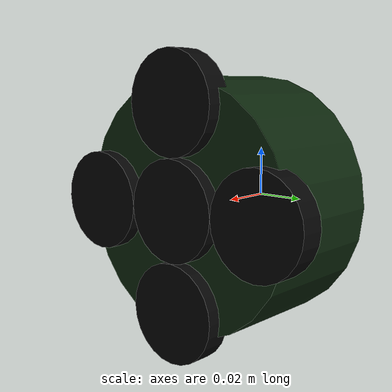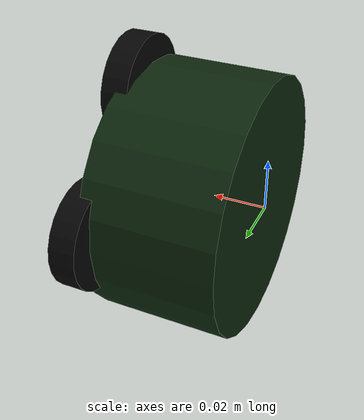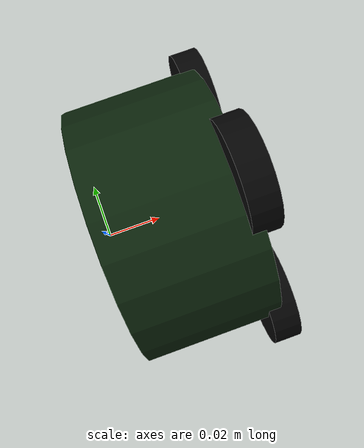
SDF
<?xml version="1.0" ?>
<sdf version='1.9'>
  <model name="suction_gripper">
    <link name='end_effector'>
      <inertial>
        <mass>0.1</mass>
        <inertia>
          <ixx>0.00166667</ixx>
          <ixy>0</ixy>
          <ixz>0</ixz>
          <iyy>0.00166667</iyy>
          <iyz>0</iyz>
          <izz>0.00166667</izz>
         </inertia>
      </inertial>
      <collision name='end_effector_collision'>
        <pose>0.025 0 0 0 1.57079 0</pose>
        <geometry>
          <cylinder>
            <radius>0.05</radius>
            <length>0.05</length>
          </cylinder>
        </geometry>
      </collision>
      <visual name='end_effector_visual'>
        <pose>0.025 0 0 0 1.57079 0</pose>
        <geometry>
          <cylinder>
            <radius>0.05</radius>
            <length>0.05</length>
          </cylinder>
        </geometry>
        <material>
          <diffuse>0.05 0.15 0.05</diffuse>
          <specular>0.8 0.8 0.8</specular>
        </material>
      </visual>
    </link>
    <link name='suction'>
      <inertial>
        <mass>0.1</mass>
        <inertia>
          <ixx>0.00166667</ixx>
          <ixy>0</ixy>
          <ixz>0</ixz>
          <iyy>0.00166667</iyy>
          <iyz>0</iyz>
          <izz>0.00166667</izz>
         </inertia>
      </inertial>

      <collision name='suction_collision_11'>
        <pose>0.0505 0 0 0 1.57079 0</pose>
        <geometry>
          <cylinder>
            <radius>0.02</radius>
            <length>0.01</length>
          </cylinder>
        </geometry>
      </collision>
      <visual name='suction_visual_11'>
        <pose>0.0505 0 0 0 1.57079 0</pose>
        <geometry>
          <cylinder>
            <radius>0.02</radius>
            <length>0.01</length>
          </cylinder>
        </geometry>
        <material>
          <diffuse>0.02 0.02 0.02</diffuse>
          <specular>0.3 0.3 0.3</specular>
        </material>
      </visual>
      <sensor name='sensor_contact_11' type='contact'>
        <contact>
          <collision>suction_collision_11</collision>
          <topic>gripper/contact_sensor_11</topic>
        </contact>
        <always_on>1</always_on>
        <update_rate>100</update_rate>
      </sensor>

      <collision name='suction_collision_10'>
        <pose>0.0505 0 -0.04 0 1.57079 0</pose>
        <geometry>
          <cylinder>
            <radius>0.02</radius>
            <length>0.01</length>
          </cylinder>
        </geometry>
      </collision>
      <visual name='suction_visual_10'>
        <pose>0.0505 0 -0.04 0 1.57079 0</pose>
        <geometry>
          <cylinder>
            <radius>0.02</radius>
            <length>0.01</length>
          </cylinder>
        </geometry>
        <material>
          <diffuse>0.02 0.02 0.02</diffuse>
          <specular>0.3 0.3 0.3</specular>
        </material>
      </visual>
      <sensor name='sensor_contact_10' type='contact'>
        <contact>
          <collision>suction_collision_10</collision>
          <topic>gripper/contact_sensor_10</topic>
        </contact>
        <always_on>1</always_on>
        <update_rate>100</update_rate>
      </sensor>

      <collision name='suction_collision_12'>
        <pose>0.0505 0 0.04 0 1.57079 0</pose>
        <geometry>
          <cylinder>
            <radius>0.02</radius>
            <length>0.01</length>
          </cylinder>
        </geometry>
      </collision>
      <visual name='suction_visual_12'>
        <pose>0.0505 0 0.04 0 1.57079 0</pose>
        <geometry>
          <cylinder>
            <radius>0.02</radius>
            <length>0.01</length>
          </cylinder>
        </geometry>
        <material>
          <diffuse>0.02 0.02 0.02</diffuse>
          <specular>0.3 0.3 0.3</specular>
        </material>
      </visual>
      <sensor name='sensor_contact_12' type='contact'>
        <contact>
          <collision>suction_collision_12</collision>
          <topic>gripper/contact_sensor_12</topic>
        </contact>
        <always_on>1</always_on>
        <update_rate>100</update_rate>
      </sensor>

      <collision name='suction_collision_01'>
        <pose>0.0505 -0.04 0 0 1.57079 0</pose>
        <geometry>
          <cylinder>
            <radius>0.02</radius>
            <length>0.01</length>
          </cylinder>
        </geometry>
      </collision>
      <visual name='suction_visual_01'>
        <pose>0.0505 -0.04 0 0 1.57079 0</pose>
        <geometry>
          <cylinder>
            <radius>0.02</radius>
            <length>0.01</length>
          </cylinder>
        </geometry>
        <material>
          <diffuse>0.02 0.02 0.02</diffuse>
          <specular>0.3 0.3 0.3</specular>
        </material>
      </visual>
      <sensor name='sensor_contact_01' type='contact'>
        <contact>
          <collision>suction_collision_01</collision>
          <topic>gripper/contact_sensor_01</topic>
        </contact>
        <always_on>1</always_on>
        <update_rate>100</update_rate>
      </sensor>

      <collision name='suction_collision_21'>
        <pose>0.0505 0.04 0 0 1.57079 0</pose>
        <geometry>
          <cylinder>
            <radius>0.02</radius>
            <length>0.01</length>
          </cylinder>
        </geometry>
      </collision>
      <visual name='suction_visual_21'>
        <pose>0.0505 0.04 0 0 1.57079 0</pose>
        <geometry>
          <cylinder>
            <radius>0.02</radius>
            <length>0.01</length>
          </cylinder>
        </geometry>
        <material>
          <diffuse>0.02 0.02 0.02</diffuse>
          <specular>0.3 0.3 0.3</specular>
        </material>
      </visual>
      <sensor name='sensor_contact_21' type='contact'>
        <contact>
          <collision>suction_collision_21</collision>
          <topic>gripper/contact_sensor_21</topic>
        </contact>
        <always_on>1</always_on>
        <update_rate>100</update_rate>
      </sensor>

    </link>

    <joint name='suction_joint' type='fixed'>
      <parent>end_effector</parent>
      <child>suction</child>
    </joint>

    <!-- Controller -->
    <plugin
      filename="libSuctionGripper.so"
      name="mbzirc::SuctionGripperPlugin">
      <parent_link>suction</parent_link>
      <contact_sensor_topic_prefix>gripper</contact_sensor_topic_prefix>
      <command_topic>gripper/suction_on</command_topic>
    </plugin>

    <frame name="mount_point"/>

  </model>
</sdf>
